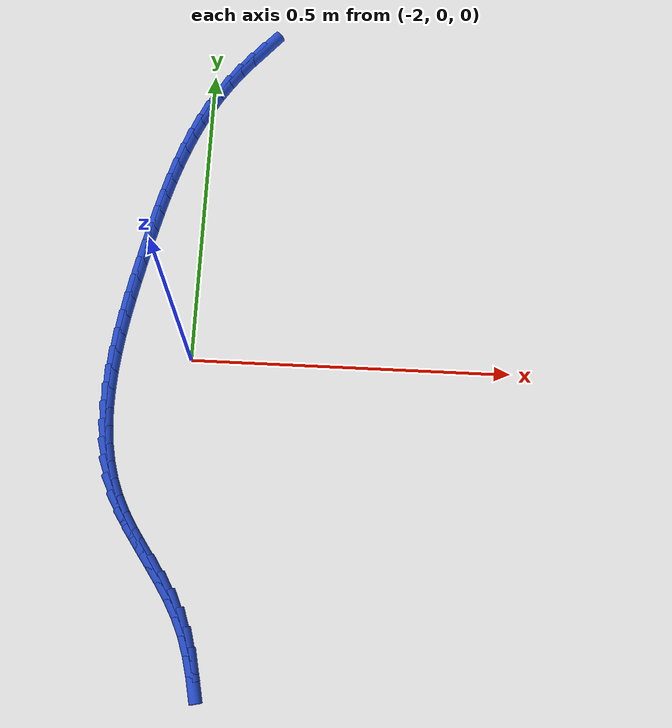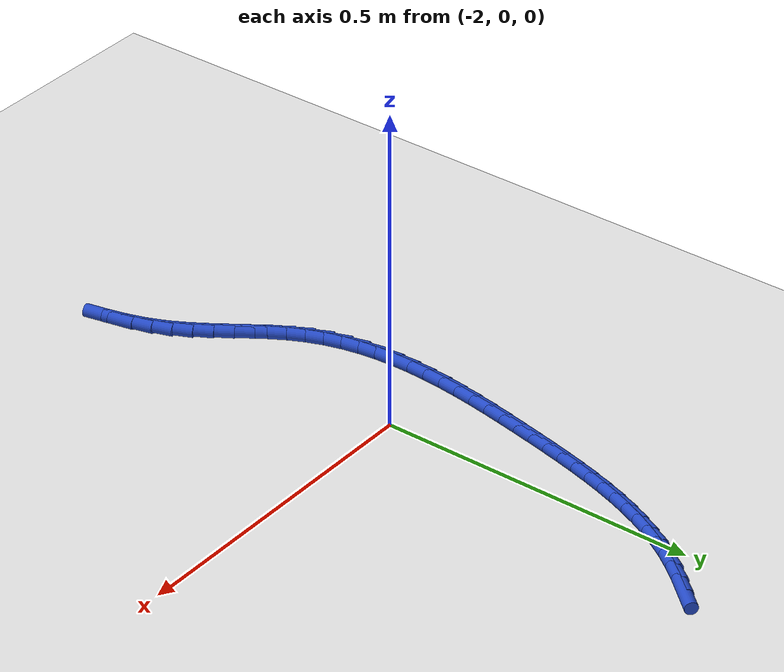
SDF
<sdf version="1.6">
 <world name="default">
  <model name="ground_plane">
   <static>1</static>
   <link name="link">
    <collision name="collision">
     <geometry><plane><normal>0 0 1</normal><size>100 100</size></plane></geometry>
     <surface><friction><ode><mu>100</mu><mu2>50</mu2></ode></friction></surface>
    </collision>
    <visual name="visual">
     <cast_shadows>0</cast_shadows>
     <geometry><plane><normal>0 0 1</normal><size>100 100</size></plane></geometry>
     <material>
      <script><uri>file://media/materials/scripts/gazebo.material</uri><name>Gazebo/WhiteGlow</name></script>
     </material>
    </visual>
   </link>
  </model>
  <model name="line">
   <link name="link_95">
    <pose>-1.922607594225558 0.5493682171866873 0.01 0 1.57 0.8506669431208894</pose>
    <collision name="collision">
     <geometry><cylinder><radius>0.01</radius><length>0.08</length></cylinder></geometry>
    </collision>
    <visual name="visual">
     <material>
      <script><name>Gazebo/Blue</name><uri>file://media/materials/scripts/gazebo.material</uri></script>
     </material>
     <geometry><cylinder><radius>0.01</radius><length>0.08</length></cylinder></geometry>
    </visual>
   </link>
   <link name="link_96">
    <pose>-1.9416614819615834 0.527649356571027 0.01 0 1.57 0.8880744042002326</pose>
    <collision name="collision">
     <geometry><cylinder><radius>0.01</radius><length>0.08</length></cylinder></geometry>
    </collision>
    <visual name="visual">
     <material>
      <script><name>Gazebo/Blue</name><uri>file://media/materials/scripts/gazebo.material</uri></script>
     </material>
     <geometry><cylinder><radius>0.01</radius><length>0.08</length></cylinder></geometry>
    </visual>
   </link>
   <link name="link_97">
    <pose>-1.959746906052819 0.5054088004496734 0.01 0 1.57 0.93861308264709</pose>
    <collision name="collision">
     <geometry><cylinder><radius>0.01</radius><length>0.08</length></cylinder></geometry>
    </collision>
    <visual name="visual">
     <material>
      <script><name>Gazebo/Blue</name><uri>file://media/materials/scripts/gazebo.material</uri></script>
     </material>
     <geometry><cylinder><radius>0.01</radius><length>0.08</length></cylinder></geometry>
    </visual>
   </link>
   <link name="link_98">
    <pose>-1.9765610531346616 0.4824532033949667 0.01 0 1.57 0.9990008353075787</pose>
    <collision name="collision">
     <geometry><cylinder><radius>0.01</radius><length>0.08</length></cylinder></geometry>
    </collision>
    <visual name="visual">
     <material>
      <script><name>Gazebo/Blue</name><uri>file://media/materials/scripts/gazebo.material</uri></script>
     </material>
     <geometry><cylinder><radius>0.01</radius><length>0.08</length></cylinder></geometry>
    </visual>
   </link>
   <link name="link_99">
    <pose>-1.99188580880583 0.4586386804477934 0.01 0 1.57 1.0574225544601359</pose>
    <collision name="collision">
     <geometry><cylinder><radius>0.01</radius><length>0.08</length></cylinder></geometry>
    </collision>
    <visual name="visual">
     <material>
      <script><name>Gazebo/Blue</name><uri>file://media/materials/scripts/gazebo.material</uri></script>
     </material>
     <geometry><cylinder><radius>0.01</radius><length>0.08</length></cylinder></geometry>
    </visual>
   </link>
   <link name="link_100">
    <pose>-2.0057849321861565 0.4339859483853308 0.01 0 1.57 1.1109994608981053</pose>
    <collision name="collision">
     <geometry><cylinder><radius>0.01</radius><length>0.08</length></cylinder></geometry>
    </collision>
    <visual name="visual">
     <material>
      <script><name>Gazebo/Blue</name><uri>file://media/materials/scripts/gazebo.material</uri></script>
     </material>
     <geometry><cylinder><radius>0.01</radius><length>0.08</length></cylinder></geometry>
    </visual>
   </link>
   <link name="link_101">
    <pose>-2.0183807454390243 0.40854992222591296 0.01 0 1.57 1.1594161691804494</pose>
    <collision name="collision">
     <geometry><cylinder><radius>0.01</radius><length>0.08</length></cylinder></geometry>
    </collision>
    <visual name="visual">
     <material>
      <script><name>Gazebo/Blue</name><uri>file://media/materials/scripts/gazebo.material</uri></script>
     </material>
     <geometry><cylinder><radius>0.01</radius><length>0.08</length></cylinder></geometry>
    </visual>
   </link>
   <link name="link_102">
    <pose>-2.029795570727815 0.3823855169878751 0.01 0 1.57 1.2025225272495497</pose>
    <collision name="collision">
     <geometry><cylinder><radius>0.01</radius><length>0.08</length></cylinder></geometry>
    </collision>
    <visual name="visual">
     <material>
      <script><name>Gazebo/Blue</name><uri>file://media/materials/scripts/gazebo.material</uri></script>
     </material>
     <geometry><cylinder><radius>0.01</radius><length>0.08</length></cylinder></geometry>
    </visual>
   </link>
   <link name="link_103">
    <pose>-2.0401517302159147 0.3555476476895517 0.01 0 1.57 1.2402973591304787</pose>
    <collision name="collision">
     <geometry><cylinder><radius>0.01</radius><length>0.08</length></cylinder></geometry>
    </collision>
    <visual name="visual">
     <material>
      <script><name>Gazebo/Blue</name><uri>file://media/materials/scripts/gazebo.material</uri></script>
     </material>
     <geometry><cylinder><radius>0.01</radius><length>0.08</length></cylinder></geometry>
    </visual>
   </link>
   <link name="link_104">
    <pose>-2.049571546066705 0.32809122934927787 0.01 0 1.57 1.272811292458499</pose>
    <collision name="collision">
     <geometry><cylinder><radius>0.01</radius><length>0.08</length></cylinder></geometry>
    </collision>
    <visual name="visual">
     <material>
      <script><name>Gazebo/Blue</name><uri>file://media/materials/scripts/gazebo.material</uri></script>
     </material>
     <geometry><cylinder><radius>0.01</radius><length>0.08</length></cylinder></geometry>
    </visual>
   </link>
   <link name="link_105">
    <pose>-2.05817734044357 0.30007117698538766 0.01 0 1.57 1.300193265366735</pose>
    <collision name="collision">
     <geometry><cylinder><radius>0.01</radius><length>0.08</length></cylinder></geometry>
    </collision>
    <visual name="visual">
     <material>
      <script><name>Gazebo/Blue</name><uri>file://media/materials/scripts/gazebo.material</uri></script>
     </material>
     <geometry><cylinder><radius>0.01</radius><length>0.08</length></cylinder></geometry>
    </visual>
   </link>
   <link name="link_106">
    <pose>-2.0660914355098927 0.27154240561621673 0.01 0 1.57 1.322602941354619</pose>
    <collision name="collision">
     <geometry><cylinder><radius>0.01</radius><length>0.08</length></cylinder></geometry>
    </collision>
    <visual name="visual">
     <material>
      <script><name>Gazebo/Blue</name><uri>file://media/materials/scripts/gazebo.material</uri></script>
     </material>
     <geometry><cylinder><radius>0.01</radius><length>0.08</length></cylinder></geometry>
    </visual>
   </link>
   <link name="link_107">
    <pose>-2.0734361534290566 0.24255983026009928 0.01 0 1.57 1.3402095482297876</pose>
    <collision name="collision">
     <geometry><cylinder><radius>0.01</radius><length>0.08</length></cylinder></geometry>
    </collision>
    <visual name="visual">
     <material>
      <script><name>Gazebo/Blue</name><uri>file://media/materials/scripts/gazebo.material</uri></script>
     </material>
     <geometry><cylinder><radius>0.01</radius><length>0.08</length></cylinder></geometry>
    </visual>
   </link>
   <link name="link_108">
    <pose>-2.080333816364446 0.21317836593536982 0.01 0 1.57 1.3531766571724253</pose>
    <collision name="collision">
     <geometry><cylinder><radius>0.01</radius><length>0.08</length></cylinder></geometry>
    </collision>
    <visual name="visual">
     <material>
      <script><name>Gazebo/Blue</name><uri>file://media/materials/scripts/gazebo.material</uri></script>
     </material>
     <geometry><cylinder><radius>0.01</radius><length>0.08</length></cylinder></geometry>
    </visual>
   </link>
   <link name="link_109">
    <pose>-2.086906746479442 0.18345292766036372 0.01 0 1.57 1.3616950134070935</pose>
    <collision name="collision">
     <geometry><cylinder><radius>0.01</radius><length>0.08</length></cylinder></geometry>
    </collision>
    <visual name="visual">
     <material>
      <script><name>Gazebo/Blue</name><uri>file://media/materials/scripts/gazebo.material</uri></script>
     </material>
     <geometry><cylinder><radius>0.01</radius><length>0.08</length></cylinder></geometry>
    </visual>
   </link>
   <link name="link_110">
    <pose>-2.0932758844595605 0.15343857976183106 0.01 0 1.57 1.3691803166538308</pose>
    <collision name="collision">
     <geometry><cylinder><radius>0.01</radius><length>0.08</length></cylinder></geometry>
    </collision>
    <visual name="visual">
     <material>
      <script><name>Gazebo/Blue</name><uri>file://media/materials/scripts/gazebo.material</uri></script>
     </material>
     <geometry><cylinder><radius>0.01</radius><length>0.08</length></cylinder></geometry>
    </visual>
   </link>
   <link name="link_111">
    <pose>-2.0994560594241642 0.12320185497306652 0.01 0 1.57 1.3812647919369492</pose>
    <collision name="collision">
     <geometry><cylinder><radius>0.01</radius><length>0.08</length></cylinder></geometry>
    </collision>
    <visual name="visual">
     <material>
      <script><name>Gazebo/Blue</name><uri>file://media/materials/scripts/gazebo.material</uri></script>
     </material>
     <geometry><cylinder><radius>0.01</radius><length>0.08</length></cylinder></geometry>
    </visual>
   </link>
   <link name="link_112">
    <pose>-2.105282670036171 0.09282867864869204 0.01 0 1.57 1.3985938364658674</pose>
    <collision name="collision">
     <geometry><cylinder><radius>0.01</radius><length>0.08</length></cylinder></geometry>
    </collision>
    <visual name="visual">
     <material>
      <script><name>Gazebo/Blue</name><uri>file://media/materials/scripts/gazebo.material</uri></script>
     </material>
     <geometry><cylinder><radius>0.01</radius><length>0.08</length></cylinder></geometry>
    </visual>
   </link>
   <link name="link_113">
    <pose>-2.1105737890123684 0.0624068487101125 0.01 0 1.57 1.4213818258677318</pose>
    <collision name="collision">
     <geometry><cylinder><radius>0.01</radius><length>0.08</length></cylinder></geometry>
    </collision>
    <visual name="visual">
     <material>
      <script><name>Gazebo/Blue</name><uri>file://media/materials/scripts/gazebo.material</uri></script>
     </material>
     <geometry><cylinder><radius>0.01</radius><length>0.08</length></cylinder></geometry>
    </visual>
   </link>
   <link name="link_114">
    <pose>-2.1151474890695487 0.032024163078731266 0.01 0 1.57 1.449944946059124</pose>
    <collision name="collision">
     <geometry><cylinder><radius>0.01</radius><length>0.08</length></cylinder></geometry>
    </collision>
    <visual name="visual">
     <material>
      <script><name>Gazebo/Blue</name><uri>file://media/materials/scripts/gazebo.material</uri></script>
     </material>
     <geometry><cylinder><radius>0.01</radius><length>0.08</length></cylinder></geometry>
    </visual>
   </link>
   <link name="link_115">
    <pose>-2.118821842924502 0.001768419675953324 0.01 0 1.57 1.484691718071778</pose>
    <collision name="collision">
     <geometry><cylinder><radius>0.01</radius><length>0.08</length></cylinder></geometry>
    </collision>
    <visual name="visual">
     <material>
      <script><name>Gazebo/Blue</name><uri>file://media/materials/scripts/gazebo.material</uri></script>
     </material>
     <geometry><cylinder><radius>0.01</radius><length>0.08</length></cylinder></geometry>
    </visual>
   </link>
   <link name="link_116">
    <pose>-2.121414923294017 -0.028272583576817535 0.01 0 1.57 1.526106926881605</pose>
    <collision name="collision">
     <geometry><cylinder><radius>0.01</radius><length>0.08</length></cylinder></geometry>
    </collision>
    <visual name="visual">
     <material>
      <script><name>Gazebo/Blue</name><uri>file://media/materials/scripts/gazebo.material</uri></script>
     </material>
     <geometry><cylinder><radius>0.01</radius><length>0.08</length></cylinder></geometry>
    </visual>
   </link>
   <link name="link_117">
    <pose>-2.122744802894885 -0.05801104875817792 0.01 0 1.57 -1.566869403281538</pose>
    <collision name="collision">
     <geometry><cylinder><radius>0.01</radius><length>0.08</length></cylinder></geometry>
    </collision>
    <visual name="visual">
     <material>
      <script><name>Gazebo/Blue</name><uri>file://media/materials/scripts/gazebo.material</uri></script>
     </material>
     <geometry><cylinder><radius>0.01</radius><length>0.08</length></cylinder></geometry>
    </visual>
   </link>
   <link name="link_118">
    <pose>-2.122629554443896 -0.08735917794672214 0.01 0 1.57 -1.5105194492624574</pose>
    <collision name="collision">
     <geometry><cylinder><radius>0.01</radius><length>0.08</length></cylinder></geometry>
    </collision>
    <visual name="visual">
     <material>
      <script><name>Gazebo/Blue</name><uri>file://media/materials/scripts/gazebo.material</uri></script>
     </material>
     <geometry><cylinder><radius>0.01</radius><length>0.08</length></cylinder></geometry>
    </visual>
   </link>
   <link name="link_119">
    <pose>-2.12088725065784 -0.11622917322104677 0.01 0 1.57 -1.4459794397530121</pose>
    <collision name="collision">
     <geometry><cylinder><radius>0.01</radius><length>0.08</length></cylinder></geometry>
    </collision>
    <visual name="visual">
     <material>
      <script><name>Gazebo/Blue</name><uri>file://media/materials/scripts/gazebo.material</uri></script>
     </material>
     <geometry><cylinder><radius>0.01</radius><length>0.08</length></cylinder></geometry>
    </visual>
   </link>
   <link name="link_120">
    <pose>-2.117335964253507 -0.14453323665974763 0.01 0 1.57 -1.372978997602159</pose>
    <collision name="collision">
     <geometry><cylinder><radius>0.01</radius><length>0.08</length></cylinder></geometry>
    </collision>
    <visual name="visual">
     <material>
      <script><name>Gazebo/Blue</name><uri>file://media/materials/scripts/gazebo.material</uri></script>
     </material>
     <geometry><cylinder><radius>0.01</radius><length>0.08</length></cylinder></geometry>
    </visual>
   </link>
   <link name="link_121">
    <pose>-2.1117937679476877 -0.17218357034142062 0.01 0 1.57 -1.2915760102466598</pose>
    <collision name="collision">
     <geometry><cylinder><radius>0.01</radius><length>0.08</length></cylinder></geometry>
    </collision>
    <visual name="visual">
     <material>
      <script><name>Gazebo/Blue</name><uri>file://media/materials/scripts/gazebo.material</uri></script>
     </material>
     <geometry><cylinder><radius>0.01</radius><length>0.08</length></cylinder></geometry>
    </visual>
   </link>
   <link name="link_122">
    <pose>-2.1040787344571714 -0.19909237634466212 0.01 0 1.57 -1.202312800070855</pose>
    <collision name="collision">
     <geometry><cylinder><radius>0.01</radius><length>0.08</length></cylinder></geometry>
    </collision>
    <visual name="visual">
     <material>
      <script><name>Gazebo/Blue</name><uri>file://media/materials/scripts/gazebo.material</uri></script>
     </material>
     <geometry><cylinder><radius>0.01</radius><length>0.08</length></cylinder></geometry>
    </visual>
   </link>
   <link name="link_123">
    <pose>-2.0940089364987493 -0.22517185674806672 0.01 0 1.57 -1.1078724658581984</pose>
    <collision name="collision">
     <geometry><cylinder><radius>0.01</radius><length>0.08</length></cylinder></geometry>
    </collision>
    <visual name="visual">
     <material>
      <script><name>Gazebo/Blue</name><uri>file://media/materials/scripts/gazebo.material</uri></script>
     </material>
     <geometry><cylinder><radius>0.01</radius><length>0.08</length></cylinder></geometry>
    </visual>
   </link>
   <link name="link_124">
    <pose>-2.08144162971368 -0.2503520140703457 0.01 0 1.57 -1.0295622951776553</pose>
    <collision name="collision">
     <geometry><cylinder><radius>0.01</radius><length>0.08</length></cylinder></geometry>
    </collision>
    <visual name="visual">
     <material>
      <script><name>Gazebo/Blue</name><uri>file://media/materials/scripts/gazebo.material</uri></script>
     </material>
     <geometry><cylinder><radius>0.01</radius><length>0.08</length></cylinder></geometry>
    </visual>
   </link>
   <link name="link_125">
    <pose>-2.0667479620297677 -0.2747963073420936 0.01 0 1.57 -0.9809746915888944</pose>
    <collision name="collision">
     <geometry><cylinder><radius>0.01</radius><length>0.08</length></cylinder></geometry>
    </collision>
    <visual name="visual">
     <material>
      <script><name>Gazebo/Blue</name><uri>file://media/materials/scripts/gazebo.material</uri></script>
     </material>
     <geometry><cylinder><radius>0.01</radius><length>0.08</length></cylinder></geometry>
    </visual>
   </link>
   <link name="link_126">
    <pose>-2.0506606373636385 -0.29883244713496304 0.01 0 1.57 -0.9609290157179141</pose>
    <collision name="collision">
     <geometry><cylinder><radius>0.01</radius><length>0.08</length></cylinder></geometry>
    </collision>
    <visual name="visual">
     <material>
      <script><name>Gazebo/Blue</name><uri>file://media/materials/scripts/gazebo.material</uri></script>
     </material>
     <geometry><cylinder><radius>0.01</radius><length>0.08</length></cylinder></geometry>
    </visual>
   </link>
   <link name="link_127">
    <pose>-2.0339198896906883 -0.3227915648566427 0.01 0 1.57 -0.9683030770288089</pose>
    <collision name="collision">
     <geometry><cylinder><radius>0.01</radius><length>0.08</length></cylinder></geometry>
    </collision>
    <visual name="visual">
     <material>
      <script><name>Gazebo/Blue</name><uri>file://media/materials/scripts/gazebo.material</uri></script>
     </material>
     <geometry><cylinder><radius>0.01</radius><length>0.08</length></cylinder></geometry>
    </visual>
   </link>
   <link name="link_128">
    <pose>-2.0172659529863104 -0.34700479191482325 0.01 0 1.57 -1.002746535137998</pose>
    <collision name="collision">
     <geometry><cylinder><radius>0.01</radius><length>0.08</length></cylinder></geometry>
    </collision>
    <visual name="visual">
     <material>
      <script><name>Gazebo/Blue</name><uri>file://media/materials/scripts/gazebo.material</uri></script>
     </material>
     <geometry><cylinder><radius>0.01</radius><length>0.08</length></cylinder></geometry>
    </visual>
   </link>
   <link name="link_129">
    <pose>-2.0014390612258968 -0.37180325971719463 0.01 0 1.57 -1.064482953965454</pose>
    <collision name="collision">
     <geometry><cylinder><radius>0.01</radius><length>0.08</length></cylinder></geometry>
    </collision>
    <visual name="visual">
     <material>
      <script><name>Gazebo/Blue</name><uri>file://media/materials/scripts/gazebo.material</uri></script>
     </material>
     <geometry><cylinder><radius>0.01</radius><length>0.08</length></cylinder></geometry>
    </visual>
   </link>
   <link name="link_130">
    <pose>-1.9871794483848417 -0.39751809967144675 0.01 0 1.57 -1.1529727995426968</pose>
    <collision name="collision">
     <geometry><cylinder><radius>0.01</radius><length>0.08</length></cylinder></geometry>
    </collision>
    <visual name="visual">
     <material>
      <script><name>Gazebo/Blue</name><uri>file://media/materials/scripts/gazebo.material</uri></script>
     </material>
     <geometry><cylinder><radius>0.01</radius><length>0.08</length></cylinder></geometry>
    </visual>
   </link>
   <link name="link_131">
    <pose>-1.9752125798896203 -0.42447265789773114 0.01 0 1.57 -1.246196282661903</pose>
    <collision name="collision">
     <geometry><cylinder><radius>0.01</radius><length>0.08</length></cylinder></geometry>
    </collision>
    <visual name="visual">
     <material>
      <script><name>Gazebo/Blue</name><uri>file://media/materials/scripts/gazebo.material</uri></script>
     </material>
     <geometry><cylinder><radius>0.01</radius><length>0.08</length></cylinder></geometry>
    </visual>
   </link>
   <link name="link_132">
    <pose>-1.965713897707807 -0.4527003339002806 0.01 0 1.57 -1.3172929387388546</pose>
    <collision name="collision">
     <geometry><cylinder><radius>0.01</radius><length>0.08</length></cylinder></geometry>
    </collision>
    <visual name="visual">
     <material>
      <script><name>Gazebo/Blue</name><uri>file://media/materials/scripts/gazebo.material</uri></script>
     </material>
     <geometry><cylinder><radius>0.01</radius><length>0.08</length></cylinder></geometry>
    </visual>
   </link>
   <link name="link_133">
    <pose>-1.9581579837770346 -0.48186506658919764 0.01 0 1.57 -1.3657922076856284</pose>
    <collision name="collision">
     <geometry><cylinder><radius>0.01</radius><length>0.08</length></cylinder></geometry>
    </collision>
    <visual name="visual">
     <material>
      <script><name>Gazebo/Blue</name><uri>file://media/materials/scripts/gazebo.material</uri></script>
     </material>
     <geometry><cylinder><radius>0.01</radius><length>0.08</length></cylinder></geometry>
    </visual>
   </link>
  </model>
 </world>
</sdf>
